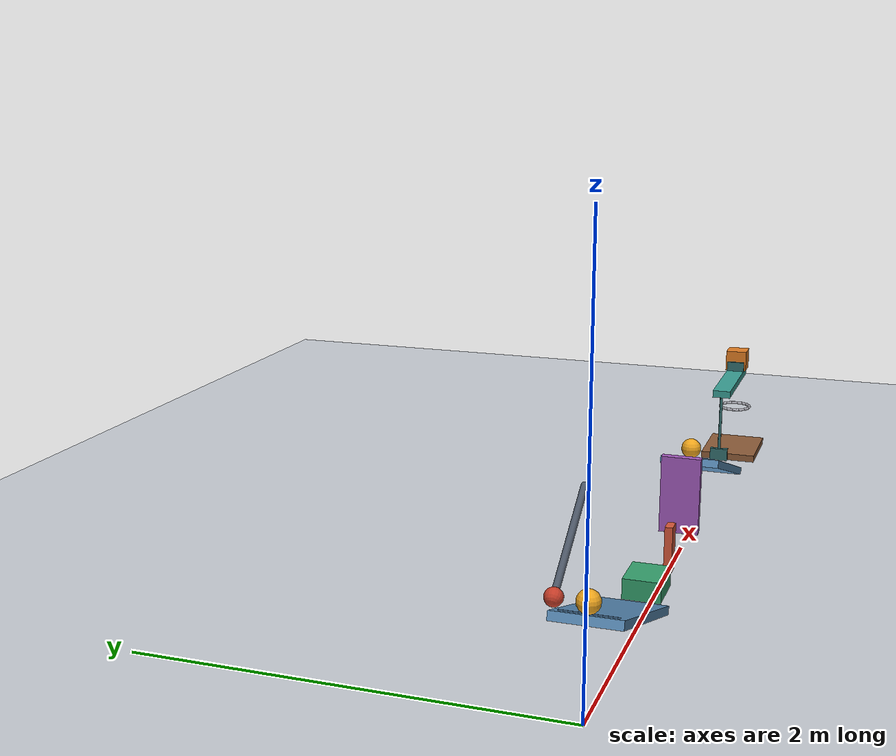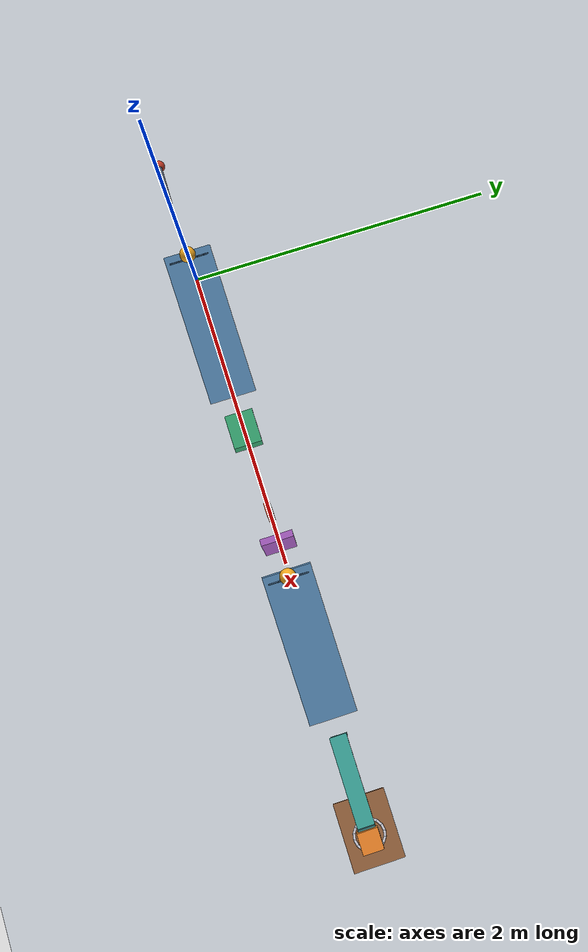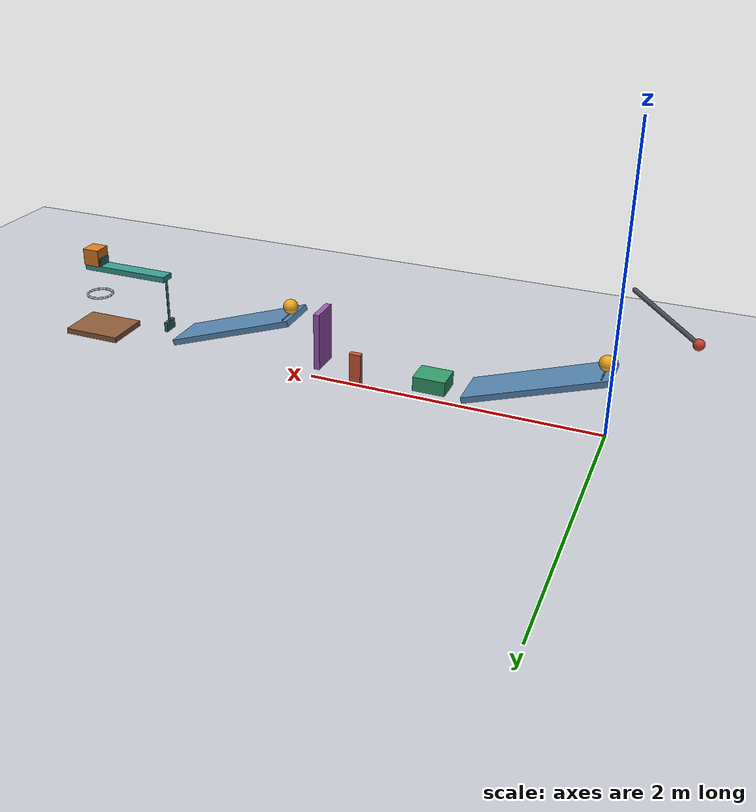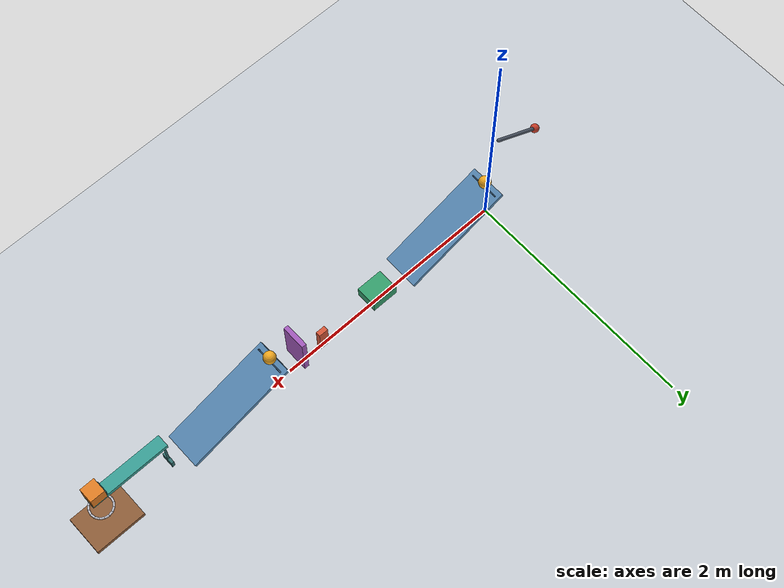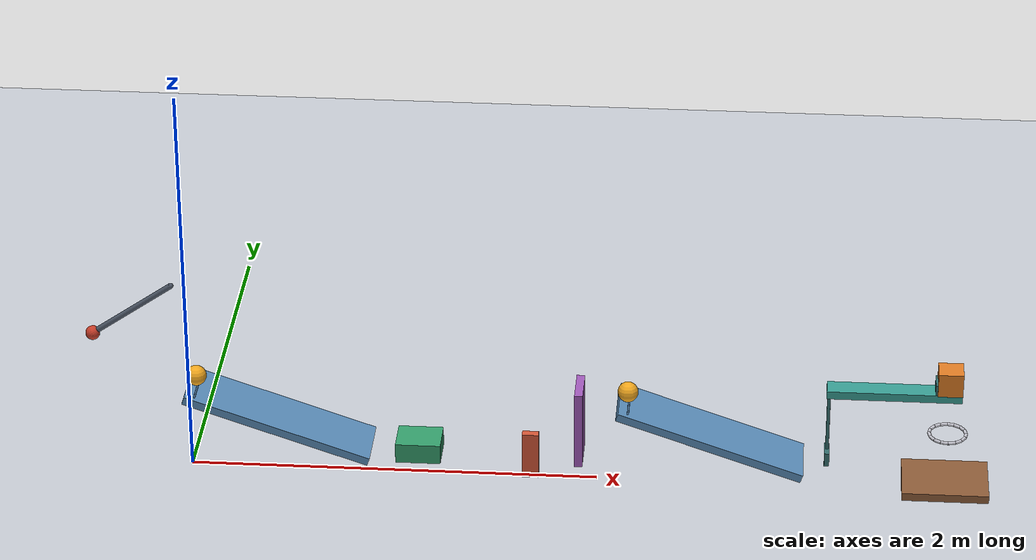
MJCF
<mujoco model="gravity_chain">
  <compiler angle="degree" autolimits="true"/>
  <option timestep="0.002" gravity="0 0 -9.81" integrator="implicitfast" solver="Newton" iterations="100" cone="elliptic"/>

  <visual>
    <global azimuth="90" elevation="-20"/>
    <headlight ambient="0.35 0.35 0.35" diffuse="0.65 0.65 0.65" specular="0.15 0.15 0.15"/>
  </visual>

  <worldbody>
    <light name="main_light" pos="1.8 -2 4" dir="0 0.4 -1" directional="true"/>
    <camera name="overview" pos="1.8 -4.5 2.3" xyaxes="1 0 0 0 0.36 0.93"/>

    <geom name="floor" type="plane" size="8 5 0.1" pos="0 0 0" friction="0.68 0.005 0.003" condim="6" solref="0.008 0.6901" solimp="0.95 0.99 0.001" rgba="0.78 0.80 0.83 1"/>

    <!-- Initial hinge coordinate is zero; the body frame supplies the 55-degree release angle. -->
    <body name="pendulum1" pos="-0.035084 0 1.013426" euler="0 55 0">
      <joint name="pendulum1_hinge" type="hinge" axis="0 -1 0" damping="0.04" range="-5 115"/>
      <geom name="pendulum1_rod" type="capsule" fromto="0 0 -0.035 0 0 -0.49" size="0.014" mass="0.08" friction="0.68 0.005 0.003" solref="0.008 0.6901" solimp="0.95 0.99 0.001" rgba="0.30 0.34 0.40 1"/>
      <geom name="pendulum1_bob" type="sphere" pos="0 0 -0.515" size="0.035" mass="0.32" friction="0.68 0.005 0.003" solref="0.008 0.6901" solimp="0.95 0.99 0.001" rgba="0.78 0.24 0.16 1"/>
    </body>

    <!-- Ramp coordinates put its top surface at local z=0. -->
    <body name="ramp1" pos="0.449121 0 0.304645" euler="0 19 0">
      <geom name="ramp1_surface" type="box" pos="0 0 -0.02" size="0.475 0.15 0.02" friction="0.68 0.005 0.003" solref="0.008 0.6901" solimp="0.95 0.99 0.001" rgba="0.35 0.55 0.72 1"/>
      <geom name="ramp1_release_detent" type="capsule" fromto="-0.427087 -0.12 0 -0.427087 0.12 0" size="0.005" friction="0.68 0.005 0.003" solref="0.008 0.6901" solimp="0.95 0.99 0.001" rgba="0.24 0.39 0.53 1"/>
    </body>

    <body name="ball1" pos="0.039916 0 0.498426">
      <freejoint name="ball1_free"/>
      <geom name="ball1_sphere" type="sphere" size="0.05" mass="0.20" friction="0.68 0.005 0.003" condim="6" solref="0.008 0.6901" solimp="0.95 0.99 0.001" rgba="0.95 0.66 0.12 1"/>
    </body>

    <!-- The initial cart leading face is 0.12 m beyond ramp1's low edge. -->
    <body name="cart1" pos="1.128243 0 0.15">
      <joint name="cart1_slide" type="slide" axis="1 0 0" damping="0.20" range="0 0.40"/>
      <geom name="cart1_box" type="box" size="0.11 0.09 0.05" mass="0.50" friction="0.68 0.005 0.003" solref="0.008 0.6901" solimp="0.95 0.99 0.001" rgba="0.20 0.62 0.42 1"/>
    </body>

    <body name="domino1" pos="1.673243 0 0.12">
      <freejoint name="domino1_free"/>
      <geom name="domino1_box" type="box" size="0.04 0.02 0.12" mass="0.25" friction="0.68 0.005 0.003" solref="0.008 0.6901" solimp="0.95 0.99 0.001" rgba="0.83 0.34 0.22 1"/>
    </body>

    <!-- Vertical-axis flap: clockwise when viewed from above. -->
    <!-- Its initial near face is 0.18 m beyond the domino's forward upper edge. -->
    <body name="flap1" pos="1.913243 -0.10 0.32">
      <joint name="flap1_hinge" type="hinge" axis="0 0 -1" damping="0.04" range="0 65" solreflimit="0.004 1"/>
      <geom name="flap1_panel" type="box" pos="0 0.10 0" size="0.02 0.10 0.20" mass="0.30" friction="0.68 0.005 0.003" solref="0.008 0.6901" solimp="0.95 0.99 0.001" rgba="0.63 0.35 0.73 1"/>
    </body>

    <body name="ramp2" pos="2.557364 -0.005 0.304645" euler="0 19 0">
      <geom name="ramp2_surface" type="box" pos="0 0 -0.02" size="0.475 0.15 0.02" friction="0.68 0.005 0.003" solref="0.008 0.6901" solimp="0.95 0.99 0.001" rgba="0.35 0.55 0.72 1"/>
      <geom name="ramp2_release_detent" type="capsule" fromto="-0.427087 -0.12 0 -0.427087 0.12 0" size="0.005" friction="0.68 0.005 0.003" solref="0.008 0.6901" solimp="0.95 0.99 0.001" rgba="0.24 0.39 0.53 1"/>
    </body>

    <body name="ball2" pos="2.148159 -0.005 0.498426">
      <freejoint name="ball2_free"/>
      <geom name="ball2_sphere" type="sphere" size="0.05" mass="0.20" friction="0.68 0.005 0.003" condim="6" solref="0.008 0.6901" solimp="0.95 0.99 0.001" rgba="0.95 0.66 0.12 1"/>
    </body>

    <!-- A left-end drop arm lets the low ramp ball strike an elevated launcher. -->
    <!-- Total seesaw mass is 0.55 kg. The passive preload is opposed initially by block1's weight. -->
    <body name="seesaw1" pos="3.431485 -0.005 0.55">
      <joint name="seesaw1_hinge" type="hinge" axis="0 -1 0" damping="0.04" stiffness="0.15" springref="315.126787" range="0 40" solreflimit="0.004 1"/>
      <geom name="seesaw1_beam" type="box" size="0.325 0.05 0.02" mass="0.51" friction="0.68 0.005 0.003" solref="0.008 0.6901" solimp="0.95 0.99 0.001" rgba="0.22 0.62 0.58 1"/>
      <geom name="seesaw1_left_arm" type="capsule" fromto="-0.313 0 -0.02 -0.313 0 -0.34" size="0.008" mass="0.02" friction="0.68 0.005 0.003" solref="0.008 0.6901" solimp="0.95 0.99 0.001" rgba="0.20 0.43 0.43 1"/>
      <geom name="seesaw1_left_striker" type="box" pos="-0.313 0 -0.365" size="0.012 0.05 0.035" mass="0.01" friction="0.68 0.005 0.003" solref="0.008 0.6901" solimp="0.95 0.99 0.001" rgba="0.20 0.43 0.43 1"/>
      <geom name="seesaw1_block_toe" type="box" pos="0.200 0 0.0475" size="0.005 0.05 0.0275" mass="0.01" friction="0.68 0.005 0.003" solref="0.008 0.6901" solimp="0.95 0.99 0.001" rgba="0.20 0.43 0.43 1"/>
    </body>

    <body name="block1" pos="3.696485 -0.005 0.63">
      <freejoint name="block1_free"/>
      <geom name="block1_cube" type="box" size="0.06 0.06 0.06" mass="0.35" friction="0.68 0.005 0.003" solref="0.008 0.6901" solimp="0.95 0.99 0.001" rgba="0.88 0.49 0.14 1"/>
    </body>

    <!-- Primitive approximation of a horizontal circular ring. -->
    <!-- Minimum clear diameter is approximately 0.16 m; center is 0.30 m below block1's initial center. -->
    <body name="ring1" pos="3.696485 -0.005 0.33">
      <geom name="ring1_segment_00" type="capsule" fromto="0.089724 0 0 0.082894 0.034337 0" size="0.008" friction="0.68 0.005 0.003" solref="0.008 0.6901" solimp="0.95 0.99 0.001" rgba="0.78 0.78 0.82 1"/>
      <geom name="ring1_segment_01" type="capsule" fromto="0.082894 0.034337 0 0.063445 0.063445 0" size="0.008" friction="0.68 0.005 0.003" solref="0.008 0.6901" solimp="0.95 0.99 0.001" rgba="0.78 0.78 0.82 1"/>
      <geom name="ring1_segment_02" type="capsule" fromto="0.063445 0.063445 0 0.034337 0.082894 0" size="0.008" friction="0.68 0.005 0.003" solref="0.008 0.6901" solimp="0.95 0.99 0.001" rgba="0.78 0.78 0.82 1"/>
      <geom name="ring1_segment_03" type="capsule" fromto="0.034337 0.082894 0 0 0.089724 0" size="0.008" friction="0.68 0.005 0.003" solref="0.008 0.6901" solimp="0.95 0.99 0.001" rgba="0.78 0.78 0.82 1"/>
      <geom name="ring1_segment_04" type="capsule" fromto="0 0.089724 0 -0.034337 0.082894 0" size="0.008" friction="0.68 0.005 0.003" solref="0.008 0.6901" solimp="0.95 0.99 0.001" rgba="0.78 0.78 0.82 1"/>
      <geom name="ring1_segment_05" type="capsule" fromto="-0.034337 0.082894 0 -0.063445 0.063445 0" size="0.008" friction="0.68 0.005 0.003" solref="0.008 0.6901" solimp="0.95 0.99 0.001" rgba="0.78 0.78 0.82 1"/>
      <geom name="ring1_segment_06" type="capsule" fromto="-0.063445 0.063445 0 -0.082894 0.034337 0" size="0.008" friction="0.68 0.005 0.003" solref="0.008 0.6901" solimp="0.95 0.99 0.001" rgba="0.78 0.78 0.82 1"/>
      <geom name="ring1_segment_07" type="capsule" fromto="-0.082894 0.034337 0 -0.089724 0 0" size="0.008" friction="0.68 0.005 0.003" solref="0.008 0.6901" solimp="0.95 0.99 0.001" rgba="0.78 0.78 0.82 1"/>
      <geom name="ring1_segment_08" type="capsule" fromto="-0.089724 0 0 -0.082894 -0.034337 0" size="0.008" friction="0.68 0.005 0.003" solref="0.008 0.6901" solimp="0.95 0.99 0.001" rgba="0.78 0.78 0.82 1"/>
      <geom name="ring1_segment_09" type="capsule" fromto="-0.082894 -0.034337 0 -0.063445 -0.063445 0" size="0.008" friction="0.68 0.005 0.003" solref="0.008 0.6901" solimp="0.95 0.99 0.001" rgba="0.78 0.78 0.82 1"/>
      <geom name="ring1_segment_10" type="capsule" fromto="-0.063445 -0.063445 0 -0.034337 -0.082894 0" size="0.008" friction="0.68 0.005 0.003" solref="0.008 0.6901" solimp="0.95 0.99 0.001" rgba="0.78 0.78 0.82 1"/>
      <geom name="ring1_segment_11" type="capsule" fromto="-0.034337 -0.082894 0 0 -0.089724 0" size="0.008" friction="0.68 0.005 0.003" solref="0.008 0.6901" solimp="0.95 0.99 0.001" rgba="0.78 0.78 0.82 1"/>
      <geom name="ring1_segment_12" type="capsule" fromto="0 -0.089724 0 0.034337 -0.082894 0" size="0.008" friction="0.68 0.005 0.003" solref="0.008 0.6901" solimp="0.95 0.99 0.001" rgba="0.78 0.78 0.82 1"/>
      <geom name="ring1_segment_13" type="capsule" fromto="0.034337 -0.082894 0 0.063445 -0.063445 0" size="0.008" friction="0.68 0.005 0.003" solref="0.008 0.6901" solimp="0.95 0.99 0.001" rgba="0.78 0.78 0.82 1"/>
      <geom name="ring1_segment_14" type="capsule" fromto="0.063445 -0.063445 0 0.082894 -0.034337 0" size="0.008" friction="0.68 0.005 0.003" solref="0.008 0.6901" solimp="0.95 0.99 0.001" rgba="0.78 0.78 0.82 1"/>
      <geom name="ring1_segment_15" type="capsule" fromto="0.082894 -0.034337 0 0.089724 0 0" size="0.008" friction="0.68 0.005 0.003" solref="0.008 0.6901" solimp="0.95 0.99 0.001" rgba="0.78 0.78 0.82 1"/>
    </body>

    <!-- Horizontal hinged door, with its upper face 0.25 m beneath the ring plane. -->
    <body name="door1" pos="3.906485 -0.005 0.06">
      <joint name="door1_hinge" type="hinge" axis="0 -1 0" damping="0.04" stiffness="1.2" springref="-57.295780" range="0 75"/>
      <geom name="door1_panel" type="box" pos="-0.21 0 0" size="0.21 0.16 0.02" mass="0.45" friction="0.68 0.005 0.003" solref="0.008 0.6901" solimp="0.95 0.99 0.001" rgba="0.55 0.36 0.22 1"/>
    </body>
  </worldbody>

  <!-- Omitted keyframe positions use model reference positions; omitted velocities are all zero. -->
  <keyframe>
    <key name="start"/>
  </keyframe>
</mujoco>
